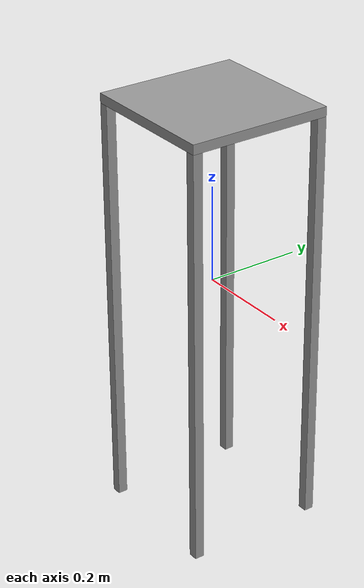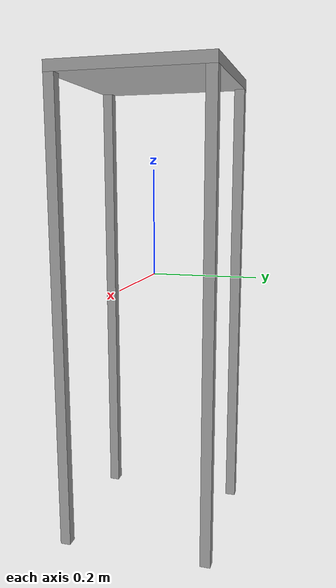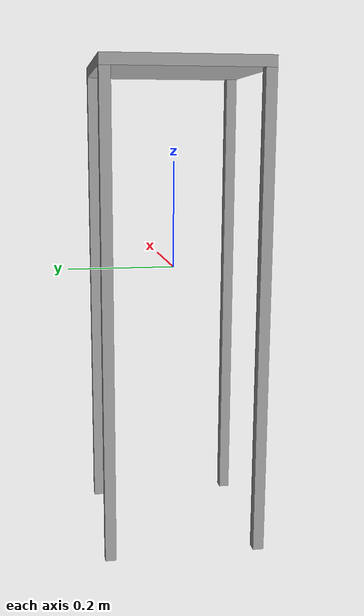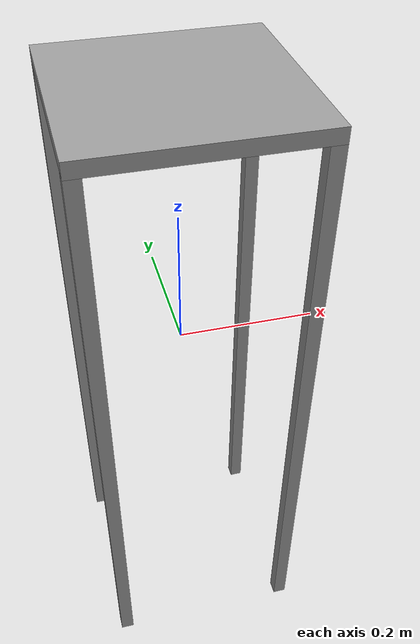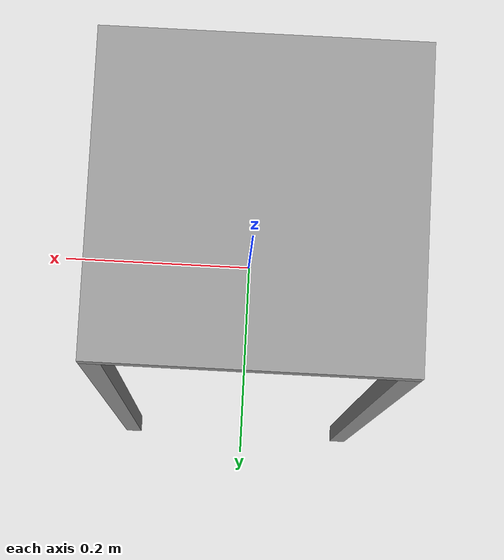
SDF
<?xml version='1.0'?>
<sdf version='1.7'>
  <model name='table_model'>
    <link name='link_0'>
      <inertial>
        <mass>1</mass>
        <inertia>
          <ixx>0.166667</ixx>
          <ixy>0</ixy>
          <ixz>0</ixz>
          <iyy>0.166667</iyy>
          <iyz>0</iyz>
          <izz>0.166667</izz>
        </inertia>
        <pose>0 0 0 0 -0 0</pose>
      </inertial>
      <pose>0 0 0.368 0 -0 0</pose>
      <gravity>1</gravity>
      <self_collide>0</self_collide>
      <kinematic>0</kinematic>
      <enable_wind>0</enable_wind>
      <visual name='visual'>
        <pose>0 0 0 0 -0 0</pose>
        <geometry>
          <box>
            <size>0.3 0.3 0.02</size>
          </box>
        </geometry>
        <material>
          <lighting>1</lighting>
          <script>
            <uri>file://media/materials/scripts/gazebo.material</uri>
            <name>Gazebo/Grey</name>
          </script>
          <shader type='pixel'>
            <normal_map>__default__</normal_map>
          </shader>
          <ambient>0.3 0.3 0.3 1</ambient>
          <diffuse>0.7 0.7 0.7 1</diffuse>
          <specular>0.01 0.01 0.01 1</specular>
          <emissive>0 0 0 1</emissive>
        </material>
        <transparency>0</transparency>
        <cast_shadows>1</cast_shadows>
      </visual>
      <collision name='collision'>
        <laser_retro>0</laser_retro>
        <max_contacts>10</max_contacts>
        <pose>0 0 0 0 -0 0</pose>
        <geometry>
          <box>
            <size>0.3 0.3 0.02</size>
          </box>
        </geometry>
        <surface>
          <friction>
            <ode>
              <mu>1</mu>
              <mu2>1</mu2>
              <fdir1>0 0 0</fdir1>
              <slip1>0</slip1>
              <slip2>0</slip2>
            </ode>
            <torsional>
              <coefficient>1</coefficient>
              <patch_radius>0</patch_radius>
              <surface_radius>0</surface_radius>
              <use_patch_radius>1</use_patch_radius>
              <ode>
                <slip>0</slip>
              </ode>
            </torsional>
          </friction>
          <bounce>
            <restitution_coefficient>0</restitution_coefficient>
            <threshold>1e+06</threshold>
          </bounce>
          <contact>
            <collide_without_contact>0</collide_without_contact>
            <collide_without_contact_bitmask>1</collide_without_contact_bitmask>
            <collide_bitmask>1</collide_bitmask>
            <ode>
              <soft_cfm>0</soft_cfm>
              <soft_erp>0.2</soft_erp>
              <kp>1e+13</kp>
              <kd>1</kd>
              <max_vel>0.01</max_vel>
              <min_depth>0</min_depth>
            </ode>
            <bullet>
              <split_impulse>1</split_impulse>
              <split_impulse_penetration_threshold>-0.01</split_impulse_penetration_threshold>
              <soft_cfm>0</soft_cfm>
              <soft_erp>0.2</soft_erp>
              <kp>1e+13</kp>
              <kd>1</kd>
            </bullet>
          </contact>
        </surface>
      </collision>
    </link>
    <link name='link_1_clone_1_clone'>
      <inertial>
        <mass>1</mass>
        <inertia>
          <ixx>0.166667</ixx>
          <ixy>0</ixy>
          <ixz>0</ixz>
          <iyy>0.166667</iyy>
          <iyz>0</iyz>
          <izz>0.166667</izz>
        </inertia>
        <pose>0 0 0 0 -0 0</pose>
      </inertial>
      <pose>-0.14 -0.14 -0.082 0 -0 0</pose>
      <gravity>1</gravity>
      <self_collide>0</self_collide>
      <kinematic>0</kinematic>
      <enable_wind>0</enable_wind>
      <visual name='visual'>
        <pose>0 0 0 0 -0 0</pose>
        <geometry>
          <box>
            <size>0.02 0.02 0.88</size>
          </box>
        </geometry>
        <material>
          <lighting>1</lighting>
          <script>
            <uri>file://media/materials/scripts/gazebo.material</uri>
            <name>Gazebo/Grey</name>
          </script>
          <shader type='pixel'>
            <normal_map>__default__</normal_map>
          </shader>
          <ambient>0.3 0.3 0.3 1</ambient>
          <diffuse>0.7 0.7 0.7 1</diffuse>
          <specular>0.01 0.01 0.01 1</specular>
          <emissive>0 0 0 1</emissive>
        </material>
        <transparency>0</transparency>
        <cast_shadows>1</cast_shadows>
      </visual>
      <collision name='collision'>
        <laser_retro>0</laser_retro>
        <max_contacts>10</max_contacts>
        <pose>0 0 0 0 -0 0</pose>
        <geometry>
          <box>
            <size>0.02 0.02 0.88</size>
          </box>
        </geometry>
        <surface>
          <friction>
            <ode>
              <mu>1</mu>
              <mu2>1</mu2>
              <fdir1>0 0 0</fdir1>
              <slip1>0</slip1>
              <slip2>0</slip2>
            </ode>
            <torsional>
              <coefficient>1</coefficient>
              <patch_radius>0</patch_radius>
              <surface_radius>0</surface_radius>
              <use_patch_radius>1</use_patch_radius>
              <ode>
                <slip>0</slip>
              </ode>
            </torsional>
          </friction>
          <bounce>
            <restitution_coefficient>0</restitution_coefficient>
            <threshold>1e+06</threshold>
          </bounce>
          <contact>
            <collide_without_contact>0</collide_without_contact>
            <collide_without_contact_bitmask>1</collide_without_contact_bitmask>
            <collide_bitmask>1</collide_bitmask>
            <ode>
              <soft_cfm>0</soft_cfm>
              <soft_erp>0.2</soft_erp>
              <kp>1e+13</kp>
              <kd>1</kd>
              <max_vel>0.01</max_vel>
              <min_depth>0</min_depth>
            </ode>
            <bullet>
              <split_impulse>1</split_impulse>
              <split_impulse_penetration_threshold>-0.01</split_impulse_penetration_threshold>
              <soft_cfm>0</soft_cfm>
              <soft_erp>0.2</soft_erp>
              <kp>1e+13</kp>
              <kd>1</kd>
            </bullet>
          </contact>
        </surface>
      </collision>
    </link>
    <link name='link_1_clone_1_clone_clone'>
      <inertial>
        <mass>1</mass>
        <inertia>
          <ixx>0.166667</ixx>
          <ixy>0</ixy>
          <ixz>0</ixz>
          <iyy>0.166667</iyy>
          <iyz>0</iyz>
          <izz>0.166667</izz>
        </inertia>
        <pose>0 0 0 0 -0 0</pose>
      </inertial>
      <pose>-0.14 0.14 -0.082 0 -0 0</pose>
      <gravity>1</gravity>
      <self_collide>0</self_collide>
      <kinematic>0</kinematic>
      <enable_wind>0</enable_wind>
      <visual name='visual'>
        <pose>0 0 0 0 -0 0</pose>
        <geometry>
          <box>
            <size>0.02 0.02 0.88</size>
          </box>
        </geometry>
        <material>
          <lighting>1</lighting>
          <script>
            <uri>file://media/materials/scripts/gazebo.material</uri>
            <name>Gazebo/Grey</name>
          </script>
          <shader type='pixel'>
            <normal_map>__default__</normal_map>
          </shader>
          <ambient>0.3 0.3 0.3 1</ambient>
          <diffuse>0.7 0.7 0.7 1</diffuse>
          <specular>0.01 0.01 0.01 1</specular>
          <emissive>0 0 0 1</emissive>
        </material>
        <transparency>0</transparency>
        <cast_shadows>1</cast_shadows>
      </visual>
      <collision name='collision'>
        <laser_retro>0</laser_retro>
        <max_contacts>10</max_contacts>
        <pose>0 0 0 0 -0 0</pose>
        <geometry>
          <box>
            <size>0.02 0.02 0.88</size>
          </box>
        </geometry>
        <surface>
          <friction>
            <ode>
              <mu>1</mu>
              <mu2>1</mu2>
              <fdir1>0 0 0</fdir1>
              <slip1>0</slip1>
              <slip2>0</slip2>
            </ode>
            <torsional>
              <coefficient>1</coefficient>
              <patch_radius>0</patch_radius>
              <surface_radius>0</surface_radius>
              <use_patch_radius>1</use_patch_radius>
              <ode>
                <slip>0</slip>
              </ode>
            </torsional>
          </friction>
          <bounce>
            <restitution_coefficient>0</restitution_coefficient>
            <threshold>1e+06</threshold>
          </bounce>
          <contact>
            <collide_without_contact>0</collide_without_contact>
            <collide_without_contact_bitmask>1</collide_without_contact_bitmask>
            <collide_bitmask>1</collide_bitmask>
            <ode>
              <soft_cfm>0</soft_cfm>
              <soft_erp>0.2</soft_erp>
              <kp>1e+13</kp>
              <kd>1</kd>
              <max_vel>0.01</max_vel>
              <min_depth>0</min_depth>
            </ode>
            <bullet>
              <split_impulse>1</split_impulse>
              <split_impulse_penetration_threshold>-0.01</split_impulse_penetration_threshold>
              <soft_cfm>0</soft_cfm>
              <soft_erp>0.2</soft_erp>
              <kp>1e+13</kp>
              <kd>1</kd>
            </bullet>
          </contact>
        </surface>
      </collision>
    </link>
    <link name='link_1_clone_1_clone_clone_0'>
      <inertial>
        <mass>1</mass>
        <inertia>
          <ixx>0.166667</ixx>
          <ixy>0</ixy>
          <ixz>0</ixz>
          <iyy>0.166667</iyy>
          <iyz>0</iyz>
          <izz>0.166667</izz>
        </inertia>
        <pose>0 0 0 0 -0 0</pose>
      </inertial>
      <pose>0.14 0.14 -0.082 0 -0 0</pose>
      <gravity>1</gravity>
      <self_collide>0</self_collide>
      <kinematic>0</kinematic>
      <enable_wind>0</enable_wind>
      <visual name='visual'>
        <pose>0 0 0 0 -0 0</pose>
        <geometry>
          <box>
            <size>0.02 0.02 0.88</size>
          </box>
        </geometry>
        <material>
          <lighting>1</lighting>
          <script>
            <uri>file://media/materials/scripts/gazebo.material</uri>
            <name>Gazebo/Grey</name>
          </script>
          <shader type='pixel'>
            <normal_map>__default__</normal_map>
          </shader>
          <ambient>0.3 0.3 0.3 1</ambient>
          <diffuse>0.7 0.7 0.7 1</diffuse>
          <specular>0.01 0.01 0.01 1</specular>
          <emissive>0 0 0 1</emissive>
        </material>
        <transparency>0</transparency>
        <cast_shadows>1</cast_shadows>
      </visual>
      <collision name='collision'>
        <laser_retro>0</laser_retro>
        <max_contacts>10</max_contacts>
        <pose>0 0 0 0 -0 0</pose>
        <geometry>
          <box>
            <size>0.02 0.02 0.88</size>
          </box>
        </geometry>
        <surface>
          <friction>
            <ode>
              <mu>1</mu>
              <mu2>1</mu2>
              <fdir1>0 0 0</fdir1>
              <slip1>0</slip1>
              <slip2>0</slip2>
            </ode>
            <torsional>
              <coefficient>1</coefficient>
              <patch_radius>0</patch_radius>
              <surface_radius>0</surface_radius>
              <use_patch_radius>1</use_patch_radius>
              <ode>
                <slip>0</slip>
              </ode>
            </torsional>
          </friction>
          <bounce>
            <restitution_coefficient>0</restitution_coefficient>
            <threshold>1e+06</threshold>
          </bounce>
          <contact>
            <collide_without_contact>0</collide_without_contact>
            <collide_without_contact_bitmask>1</collide_without_contact_bitmask>
            <collide_bitmask>1</collide_bitmask>
            <ode>
              <soft_cfm>0</soft_cfm>
              <soft_erp>0.2</soft_erp>
              <kp>1e+13</kp>
              <kd>1</kd>
              <max_vel>0.01</max_vel>
              <min_depth>0</min_depth>
            </ode>
            <bullet>
              <split_impulse>1</split_impulse>
              <split_impulse_penetration_threshold>-0.01</split_impulse_penetration_threshold>
              <soft_cfm>0</soft_cfm>
              <soft_erp>0.2</soft_erp>
              <kp>1e+13</kp>
              <kd>1</kd>
            </bullet>
          </contact>
        </surface>
      </collision>
    </link>
    <link name='link_1_clone_1_clone_clone_1'>
      <inertial>
        <mass>1</mass>
        <inertia>
          <ixx>0.166667</ixx>
          <ixy>0</ixy>
          <ixz>0</ixz>
          <iyy>0.166667</iyy>
          <iyz>0</iyz>
          <izz>0.166667</izz>
        </inertia>
        <pose>0 0 0 0 -0 0</pose>
      </inertial>
      <pose>0.14 -0.14 -0.082 0 -0 0</pose>
      <gravity>1</gravity>
      <self_collide>0</self_collide>
      <kinematic>0</kinematic>
      <enable_wind>0</enable_wind>
      <visual name='visual'>
        <pose>0 0 0 0 -0 0</pose>
        <geometry>
          <box>
            <size>0.02 0.02 0.88</size>
          </box>
        </geometry>
        <material>
          <lighting>1</lighting>
          <script>
            <uri>file://media/materials/scripts/gazebo.material</uri>
            <name>Gazebo/Grey</name>
          </script>
          <shader type='pixel'>
            <normal_map>__default__</normal_map>
          </shader>
          <ambient>0.3 0.3 0.3 1</ambient>
          <diffuse>0.7 0.7 0.7 1</diffuse>
          <specular>0.01 0.01 0.01 1</specular>
          <emissive>0 0 0 1</emissive>
        </material>
        <transparency>0</transparency>
        <cast_shadows>1</cast_shadows>
      </visual>
      <collision name='collision'>
        <laser_retro>0</laser_retro>
        <max_contacts>10</max_contacts>
        <pose>0 0 0 0 -0 0</pose>
        <geometry>
          <box>
            <size>0.02 0.02 0.88</size>
          </box>
        </geometry>
        <surface>
          <friction>
            <ode>
              <mu>1</mu>
              <mu2>1</mu2>
              <fdir1>0 0 0</fdir1>
              <slip1>0</slip1>
              <slip2>0</slip2>
            </ode>
            <torsional>
              <coefficient>1</coefficient>
              <patch_radius>0</patch_radius>
              <surface_radius>0</surface_radius>
              <use_patch_radius>1</use_patch_radius>
              <ode>
                <slip>0</slip>
              </ode>
            </torsional>
          </friction>
          <bounce>
            <restitution_coefficient>0</restitution_coefficient>
            <threshold>1e+06</threshold>
          </bounce>
          <contact>
            <collide_without_contact>0</collide_without_contact>
            <collide_without_contact_bitmask>1</collide_without_contact_bitmask>
            <collide_bitmask>1</collide_bitmask>
            <ode>
              <soft_cfm>0</soft_cfm>
              <soft_erp>0.2</soft_erp>
              <kp>1e+13</kp>
              <kd>1</kd>
              <max_vel>0.01</max_vel>
              <min_depth>0</min_depth>
            </ode>
            <bullet>
              <split_impulse>1</split_impulse>
              <split_impulse_penetration_threshold>-0.01</split_impulse_penetration_threshold>
              <soft_cfm>0</soft_cfm>
              <soft_erp>0.2</soft_erp>
              <kp>1e+13</kp>
              <kd>1</kd>
            </bullet>
          </contact>
        </surface>
      </collision>
    </link>
    <joint name='link_0_JOINT_6' type='fixed'>
      <parent>link_0</parent>
      <child>link_1_clone_1_clone_clone_0</child>
      <pose>0 0 0 0 -0 0</pose>
      <physics>
        <ode>
          <limit>
            <cfm>0</cfm>
            <erp>0.2</erp>
          </limit>
          <suspension>
            <cfm>0</cfm>
            <erp>0.2</erp>
          </suspension>
        </ode>
      </physics>
    </joint>
    <joint name='link_0_JOINT_7' type='fixed'>
      <parent>link_0</parent>
      <child>link_1_clone_1_clone_clone</child>
      <pose>0 0 0 0 -0 0</pose>
      <physics>
        <ode>
          <limit>
            <cfm>0</cfm>
            <erp>0.2</erp>
          </limit>
          <suspension>
            <cfm>0</cfm>
            <erp>0.2</erp>
          </suspension>
        </ode>
      </physics>
    </joint>
    <joint name='link_0_JOINT_8' type='fixed'>
      <parent>link_0</parent>
      <child>link_1_clone_1_clone_clone_1</child>
      <pose>0 0 0 0 -0 0</pose>
      <physics>
        <ode>
          <limit>
            <cfm>0</cfm>
            <erp>0.2</erp>
          </limit>
          <suspension>
            <cfm>0</cfm>
            <erp>0.2</erp>
          </suspension>
        </ode>
      </physics>
    </joint>
    <joint name='link_0_JOINT_9' type='fixed'>
      <parent>link_0</parent>
      <child>link_1_clone_1_clone</child>
      <pose>0 0 0 0 -0 0</pose>
      <physics>
        <ode>
          <limit>
            <cfm>0</cfm>
            <erp>0.2</erp>
          </limit>
          <suspension>
            <cfm>0</cfm>
            <erp>0.2</erp>
          </suspension>
        </ode>
      </physics>
    </joint>
    <static>0</static>
    <allow_auto_disable>1</allow_auto_disable>
  </model>
</sdf>
